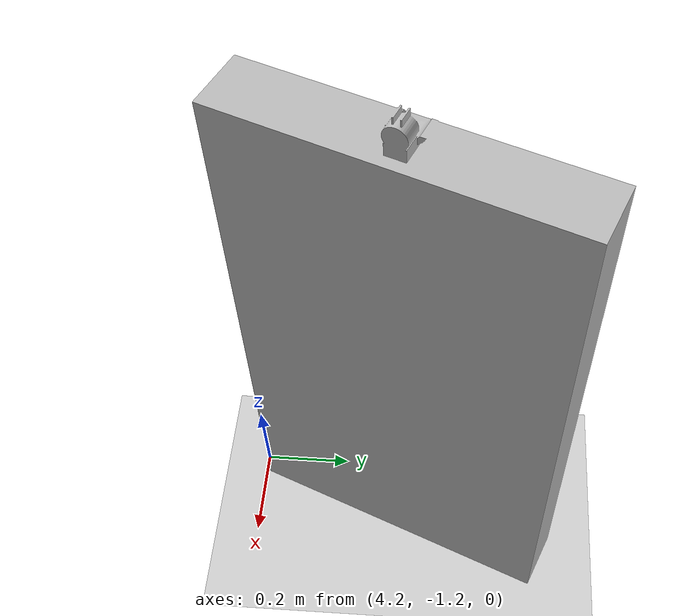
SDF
<sdf version="1.6">
 <world name="default">
  <light name="sun" type="directional">
   <pose>0 0 10 0 -0 0</pose>
   <diffuse>0.8 0.8 0.8 1</diffuse>
   <specular>0.2 0.2 0.2 1</specular>
   <attenuation>
    <range>1000</range>
    <constant>0.9</constant>
    <linear>0.01</linear>
    <quadratic>0.001</quadratic>
   </attenuation>
   <direction>-0.5 0.1 -0.9</direction>
  </light>
  <model name="ground_plane">
   <static>1</static>
   <link name="link">
    <collision name="collision">
     <geometry><plane><normal>0 0 1</normal><size>100 100</size></plane></geometry>
     <surface>
      <contact><collide_bitmask>65535</collide_bitmask></contact>
      <friction><ode><mu>100</mu><mu2>50</mu2></ode></friction>
     </surface>
    </collision>
    <visual name="visual">
     <cast_shadows>0</cast_shadows>
     <geometry><plane><normal>0 0 1</normal><size>100 100</size></plane></geometry>
     <material>
      <script><uri>file://media/materials/scripts/gazebo.material</uri><name>Gazebo/Grey</name></script>
     </material>
    </visual>
   </link>
  </model>
  <gravity>0 0 -9.8</gravity>
  <magnetic_field>6e-06 2.3e-05 -4.2e-05</magnetic_field>
  <atmosphere type="adiabatic"/>
  <physics name="default_physics" default="0" type="ode">
   <max_step_size>0.001</max_step_size>
   <real_time_factor>1</real_time_factor>
   <real_time_update_rate>1000</real_time_update_rate>
  </physics>
  <scene><ambient>0.4 0.4 0.4 1</ambient><background>0.7 0.7 0.7 1</background><shadows>1</shadows></scene>
  <audio><device>default</device></audio>
  <spherical_coordinates>
   <surface_model>EARTH_WGS84</surface_model>
   <latitude_deg>0</latitude_deg>
   <longitude_deg>0</longitude_deg>
   <elevation>0</elevation>
   <heading_deg>0</heading_deg>
  </spherical_coordinates>
  <model name="station_with_ar">
   <link name="station_base_link">
    <inertial>
     <mass>0.0001</mass>
     <inertia>
      <ixx>5.5871</ixx>
      <ixy>4.5401e-09</ixy>
      <ixz>-2.5039e-10</ixz>
      <iyy>1.4361</iyy>
      <iyz>-0.0014347</iyz>
      <izz>6.8461</izz>
     </inertia>
    </inertial>
    <visual name="station_base_link_visual">
     <geometry>
      <mesh>
       <scale>1 1 1</scale>
       <uri>/home/mou/ws_myrobot/src/husky_ur5e/husky_ur5_world/meshes/station.dae</uri>
      </mesh>
     </geometry>
    </visual>
    <collision name="station_base_link_collision">
     <geometry>
      <mesh>
       <uri>/home/mou/ws_myrobot/src/husky_ur5e/husky_ur5_world/meshes/station.dae</uri>
       <scale>1 1 1</scale>
      </mesh>
     </geometry>
     <surface>
      <friction>
       <ode><mu>1</mu><mu2>1</mu2><fdir1>0 0 0</fdir1><slip1>0</slip1><slip2>0</slip2></ode>
       <torsional>
        <coefficient>1</coefficient>
        <patch_radius>0</patch_radius>
        <surface_radius>0</surface_radius>
        <use_patch_radius>1</use_patch_radius>
        <ode><slip>0</slip></ode>
       </torsional>
      </friction>
      <bounce><restitution_coefficient>0</restitution_coefficient><threshold>1e+06</threshold></bounce>
      <contact>
       <collide_without_contact>0</collide_without_contact>
       <collide_without_contact_bitmask>1</collide_without_contact_bitmask>
       <collide_bitmask>1</collide_bitmask>
       <ode>
        <soft_cfm>0</soft_cfm>
        <soft_erp>0.2</soft_erp>
        <kp>1e+13</kp>
        <kd>1</kd>
        <max_vel>0.01</max_vel>
        <min_depth>0</min_depth>
       </ode>
       <bullet>
        <split_impulse>1</split_impulse>
        <split_impulse_penetration_threshold>-0.01</split_impulse_penetration_threshold>
        <soft_cfm>0</soft_cfm>
        <soft_erp>0.2</soft_erp>
        <kp>1e+13</kp>
        <kd>1</kd>
       </bullet>
      </contact>
     </surface>
    </collision>
   </link>
   <static>0</static>
   <pose>4.50127 -0.543079 0 0.00015 -3.6e-05 2.7588</pose>
  </model>
 </world>
</sdf>
